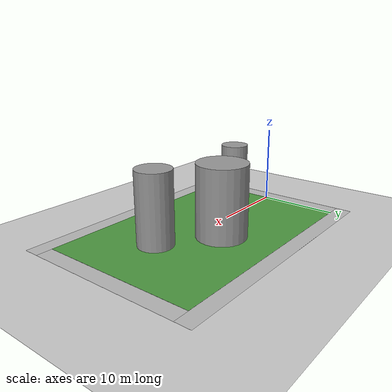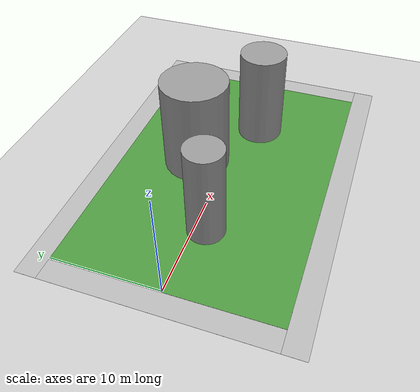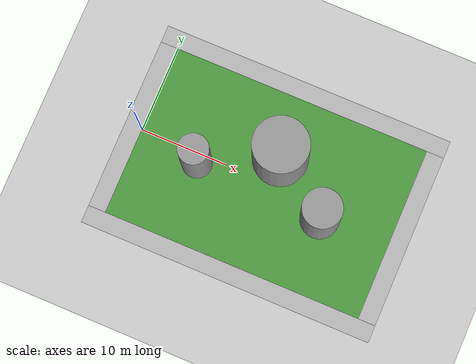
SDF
<sdf version="1.7">
 <world name="default">
  <light name="sun" type="directional">
   <pose>0 0 10 0 -0 0</pose>
   <diffuse>0.8 0.8 0.8 1</diffuse>
   <specular>0.2 0.2 0.2 1</specular>
   <attenuation>
    <range>1000</range>
    <constant>0.9</constant>
    <linear>0.01</linear>
    <quadratic>0.001</quadratic>
   </attenuation>
   <direction>-0.5 0.1 -0.9</direction>
   <spot><inner_angle>0</inner_angle><outer_angle>0</outer_angle><falloff>0</falloff></spot>
  </light>
  <model name="ground_plane">
   <static>1</static>
   <link name="link">
    <collision name="collision">
     <geometry><plane><normal>0 0 1</normal><size>100 100</size></plane></geometry>
     <surface><friction><ode><mu>100</mu><mu2>50</mu2></ode></friction></surface>
    </collision>
    <visual name="visual">
     <cast_shadows>0</cast_shadows>
     <geometry><plane><normal>0 0 1</normal><size>100 100</size></plane></geometry>
     <material>
      <script><uri>file://media/materials/scripts/gazebo.material</uri><name>Gazebo/Grey</name></script>
     </material>
    </visual>
   </link>
  </model>
  <gravity>0 0 -9.8</gravity>
  <magnetic_field>6e-06 2.3e-05 -4.2e-05</magnetic_field>
  <atmosphere type="adiabatic"/>
  <physics type="ode">
   <max_step_size>0.001</max_step_size>
   <real_time_factor>1</real_time_factor>
   <real_time_update_rate>1000</real_time_update_rate>
  </physics>
  <scene><ambient>0.4 0.4 0.4 1</ambient><background>0.7 0.7 0.7 1</background><shadows>1</shadows></scene>
  <spherical_coordinates>
   <surface_model>EARTH_WGS84</surface_model>
   <latitude_deg>0</latitude_deg>
   <longitude_deg>0</longitude_deg>
   <elevation>0</elevation>
   <heading_deg>0</heading_deg>
  </spherical_coordinates>
  <model name="robocup_3d_field">
   <static>1</static>
   <link name="field">
    <pose>0 0 0.01 0 -0 0</pose>
    <collision name="collision">
     <geometry><plane><normal>0 0 1</normal><size>30 20</size></plane></geometry>
     <surface><friction><ode><mu>100</mu><mu2>50</mu2></ode></friction></surface>
    </collision>
    <visual name="base1">
     <pose>0 11 0.001 0 -0 0</pose>
     <cast_shadows>0</cast_shadows>
     <geometry><plane><normal>0 0 1</normal><size>34 2</size></plane></geometry>
     <material>
      <script>
       <uri>model://robocup_3Dsim_field/materials/scripts/</uri>
       <uri>model://robocup_3Dsim_field/materials/textures/</uri>
       <name>RoboCup/FieldBorder</name>
      </script>
     </material>
    </visual>
    <visual name="base2">
     <pose>0 -11 0.001 0 -0 0</pose>
     <cast_shadows>0</cast_shadows>
     <geometry><plane><normal>0 0 1</normal><size>34 2</size></plane></geometry>
     <material>
      <script>
       <uri>model://robocup_3Dsim_field/materials/scripts/</uri>
       <uri>model://robocup_3Dsim_field/materials/textures/</uri>
       <name>RoboCup/FieldBorder</name>
      </script>
     </material>
    </visual>
    <visual name="base3">
     <pose>16 0 0.001 0 -0 0</pose>
     <cast_shadows>0</cast_shadows>
     <geometry><plane><normal>0 0 1</normal><size>2 20</size></plane></geometry>
     <material>
      <script>
       <uri>model://robocup_3Dsim_field/materials/scripts/</uri>
       <uri>model://robocup_3Dsim_field/materials/textures/</uri>
       <name>RoboCup/FieldBorder</name>
      </script>
     </material>
    </visual>
    <visual name="base4">
     <pose>-16 0 0.001 0 -0 0</pose>
     <cast_shadows>0</cast_shadows>
     <geometry><plane><normal>0 0 1</normal><size>2 20</size></plane></geometry>
     <material>
      <script>
       <uri>model://robocup_3Dsim_field/materials/scripts/</uri>
       <uri>model://robocup_3Dsim_field/materials/textures/</uri>
       <name>RoboCup/FieldBorder</name>
      </script>
     </material>
    </visual>
    <visual name="carpet">
     <cast_shadows>0</cast_shadows>
     <geometry><plane><normal>0 0 1</normal><size>30 20</size></plane></geometry>
     <material>
      <script>
       <uri>model://robocup_3Dsim_field/materials/scripts/</uri>
       <uri>model://robocup_3Dsim_field/materials/textures/</uri>
       <name>RoboCup/Grass</name>
      </script>
     </material>
    </visual>
   </link>
   <pose>14.894 -0.001991 0 0 -0 0</pose>
  </model>
  <model name="unit_cylinder">
   <pose>7.0304 -1.06609 4.56375 1e-06 -0 0.004557</pose>
   <link name="link">
    <inertial>
     <mass>1</mass>
     <inertia><ixx>0.145833</ixx><ixy>0</ixy><ixz>0</ixz><iyy>0.145833</iyy><iyz>0</iyz><izz>0.125</izz></inertia>
    </inertial>
    <collision name="collision">
     <geometry><cylinder><radius>1.71239</radius><length>9.1075</length></cylinder></geometry>
    </collision>
    <visual name="visual">
     <geometry><cylinder><radius>1.71239</radius><length>9.1075</length></cylinder></geometry>
     <material>
      <script><name>Gazebo/Grey</name><uri>file://media/materials/scripts/gazebo.material</uri></script>
     </material>
    </visual>
   </link>
  </model>
  <model name="unit_cylinder_clone">
   <pose>15.3001 2.93085 4.56374 0 -0 0.004688</pose>
   <link name="link">
    <inertial>
     <mass>1</mass>
     <inertia><ixx>0.145833</ixx><ixy>0</ixy><ixz>0</ixz><iyy>0.145833</iyy><iyz>0</iyz><izz>0.125</izz></inertia>
    </inertial>
    <collision name="collision">
     <geometry><cylinder><radius>3.1246</radius><length>9.1075</length></cylinder></geometry>
    </collision>
    <visual name="visual">
     <geometry><cylinder><radius>3.1246</radius><length>9.1075</length></cylinder></geometry>
     <material>
      <script><name>Gazebo/Grey</name><uri>file://media/materials/scripts/gazebo.material</uri></script>
     </material>
    </visual>
   </link>
  </model>
  <model name="unit_cylinder_clone_0">
   <pose>21.8591 -1.578 4.56374 1e-06 1e-06 0.004658</pose>
   <link name="link">
    <inertial>
     <mass>1</mass>
     <inertia><ixx>0.145833</ixx><ixy>0</ixy><ixz>0</ixz><iyy>0.145833</iyy><iyz>0</iyz><izz>0.125</izz></inertia>
    </inertial>
    <collision name="collision">
     <geometry><cylinder><radius>2.20515</radius><length>9.1075</length></cylinder></geometry>
    </collision>
    <visual name="visual">
     <geometry><cylinder><radius>2.20515</radius><length>9.1075</length></cylinder></geometry>
     <material>
      <script><name>Gazebo/Grey</name><uri>file://media/materials/scripts/gazebo.material</uri></script>
     </material>
    </visual>
   </link>
  </model>
  <light name="user_directional_light_0" type="directional">
   <pose>66.318 8.74386 1 0 -0 0</pose>
   <diffuse>0.5 0.5 0.5 1</diffuse>
   <specular>0.1 0.1 0.1 1</specular>
   <direction>0.1 0.1 -0.9</direction>
   <attenuation>
    <range>20</range>
    <constant>0.5</constant>
    <linear>0.01</linear>
    <quadratic>0.001</quadratic>
   </attenuation>
  </light>
 </world>
</sdf>
